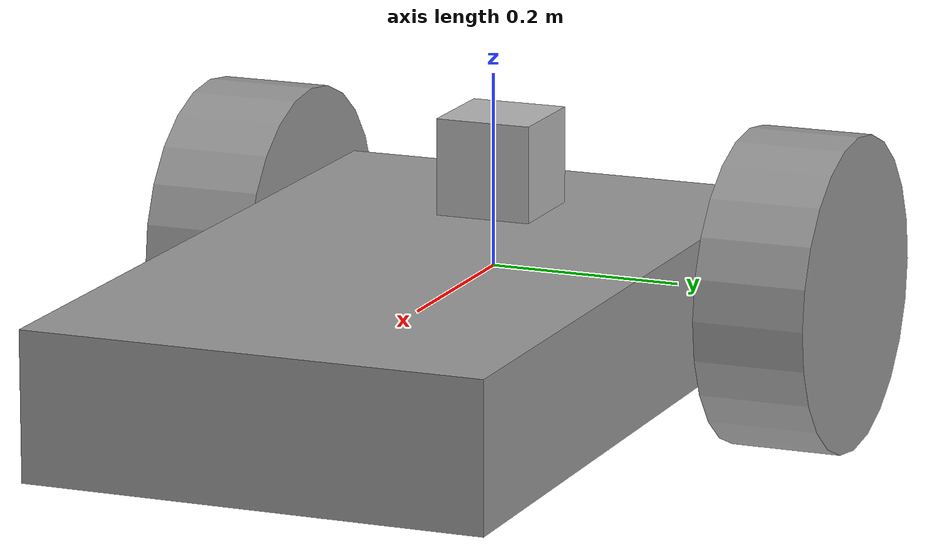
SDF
<?xml version='1.0'?>
<sdf version='1.7'>
  <model name='follower'>
    <link name='link_0'>
      <inertial>
        <mass>0.0572068</mass>
        <inertia>
          <ixx>0.00117995</ixx>
          <ixy>0</ixy>
          <ixz>0</ixz>
          <iyy>0.00315674</iyy>
          <iyz>0</iyz>
          <izz>0.00411931</izz>
        </inertia>
        <pose>0 0 0 0 -0 0</pose>
      </inertial>
      <pose>0.204787 -0.000791 -0.018879 0 -0 0</pose>
      <gravity>1</gravity>
      <self_collide>0</self_collide>
      <kinematic>0</kinematic>
      <enable_wind>0</enable_wind>
      <visual name='visual'>
        <pose>0 0 0 0 -0 0</pose>
        <geometry>
          <box>
            <size>0.799609 0.474039 0.150996</size>
          </box>
        </geometry>
        <material>
          <lighting>1</lighting>
          <script>
            <uri>file://media/materials/scripts/gazebo.material</uri>
            <name>Gazebo/Grey</name>
          </script>
          <shader type='pixel'>
            <normal_map>__default__</normal_map>
          </shader>
          <emissive>0 0 0 1</emissive>
          <ambient>0.3 0.3 0.3 1</ambient>
          <diffuse>0.7 0.7 0.7 1</diffuse>
          <specular>0.01 0.01 0.01 1</specular>
        </material>
        <transparency>0</transparency>
        <cast_shadows>1</cast_shadows>
      </visual>
      <collision name='collision'>
        <laser_retro>0</laser_retro>
        <max_contacts>10</max_contacts>
        <pose>0 0 0 0 -0 0</pose>
        <geometry>
          <box>
            <size>0.799609 0.474039 0.150996</size>
          </box>
        </geometry>
        <surface>
          <friction>
            <ode>
              <mu>1</mu>
              <mu2>1</mu2>
              <fdir1>0 0 0</fdir1>
              <slip1>0</slip1>
              <slip2>0</slip2>
            </ode>
            <torsional>
              <coefficient>1</coefficient>
              <patch_radius>0</patch_radius>
              <surface_radius>0</surface_radius>
              <use_patch_radius>1</use_patch_radius>
              <ode>
                <slip>0</slip>
              </ode>
            </torsional>
          </friction>
          <bounce>
            <restitution_coefficient>0</restitution_coefficient>
            <threshold>1e+06</threshold>
          </bounce>
          <contact>
            <collide_without_contact>0</collide_without_contact>
            <collide_without_contact_bitmask>1</collide_without_contact_bitmask>
            <collide_bitmask>1</collide_bitmask>
            <ode>
              <soft_cfm>0</soft_cfm>
              <soft_erp>0.2</soft_erp>
              <kp>1e+13</kp>
              <kd>1</kd>
              <max_vel>0.01</max_vel>
              <min_depth>0</min_depth>
            </ode>
            <bullet>
              <split_impulse>1</split_impulse>
              <split_impulse_penetration_threshold>-0.01</split_impulse_penetration_threshold>
              <soft_cfm>0</soft_cfm>
              <soft_erp>0.2</soft_erp>
              <kp>1e+13</kp>
              <kd>1</kd>
            </bullet>
          </contact>
        </surface>
      </collision>
    </link>
    <link name='link_1'>
      <inertial>
        <mass>0.0123317</mass>
        <inertia>
          <ixx>9.586e-05</ixx>
          <ixy>0</ixy>
          <ixz>0</ixz>
          <iyy>9.586e-05</iyy>
          <iyz>0</iyz>
          <izz>0.00016418</izz>
        </inertia>
        <pose>0 0 0 0 -0 0</pose>
      </inertial>
      <pose>-0.095213 -0.300791 -0.018879 1.5708 -0 0</pose>
      <gravity>1</gravity>
      <self_collide>0</self_collide>
      <kinematic>0</kinematic>
      <enable_wind>0</enable_wind>
      <visual name='visual'>
        <pose>0 0 0 0 -0 0</pose>
        <geometry>
          <cylinder>
            <radius>0.163176</radius>
            <length>0.115772</length>
          </cylinder>
        </geometry>
        <material>
          <lighting>1</lighting>
          <script>
            <uri>file://media/materials/scripts/gazebo.material</uri>
            <name>Gazebo/Grey</name>
          </script>
          <shader type='pixel'>
            <normal_map>__default__</normal_map>
          </shader>
          <emissive>0 0 0 1</emissive>
          <ambient>0.3 0.3 0.3 1</ambient>
          <diffuse>0.7 0.7 0.7 1</diffuse>
          <specular>0.01 0.01 0.01 1</specular>
        </material>
        <transparency>0</transparency>
        <cast_shadows>1</cast_shadows>
      </visual>
      <collision name='collision'>
        <laser_retro>0</laser_retro>
        <max_contacts>10</max_contacts>
        <pose>0 0 0 0 -0 0</pose>
        <geometry>
          <cylinder>
            <radius>0.163176</radius>
            <length>0.115772</length>
          </cylinder>
        </geometry>
        <surface>
          <friction>
            <ode>
              <mu>1</mu>
              <mu2>1</mu2>
              <fdir1>0 0 0</fdir1>
              <slip1>0</slip1>
              <slip2>0</slip2>
            </ode>
            <torsional>
              <coefficient>1</coefficient>
              <patch_radius>0</patch_radius>
              <surface_radius>0</surface_radius>
              <use_patch_radius>1</use_patch_radius>
              <ode>
                <slip>0</slip>
              </ode>
            </torsional>
          </friction>
          <bounce>
            <restitution_coefficient>0</restitution_coefficient>
            <threshold>1e+06</threshold>
          </bounce>
          <contact>
            <collide_without_contact>0</collide_without_contact>
            <collide_without_contact_bitmask>1</collide_without_contact_bitmask>
            <collide_bitmask>1</collide_bitmask>
            <ode>
              <soft_cfm>0</soft_cfm>
              <soft_erp>0.2</soft_erp>
              <kp>1e+13</kp>
              <kd>1</kd>
              <max_vel>0.01</max_vel>
              <min_depth>0</min_depth>
            </ode>
            <bullet>
              <split_impulse>1</split_impulse>
              <split_impulse_penetration_threshold>-0.01</split_impulse_penetration_threshold>
              <soft_cfm>0</soft_cfm>
              <soft_erp>0.2</soft_erp>
              <kp>1e+13</kp>
              <kd>1</kd>
            </bullet>
          </contact>
        </surface>
      </collision>
    </link>
    <link name='link_1_clone'>
      <inertial>
        <mass>0.0123317</mass>
        <inertia>
          <ixx>9.586e-05</ixx>
          <ixy>0</ixy>
          <ixz>0</ixz>
          <iyy>9.586e-05</iyy>
          <iyz>0</iyz>
          <izz>0.00016417</izz>
        </inertia>
        <pose>0 0 0 0 -0 0</pose>
      </inertial>
      <pose>-0.095213 0.29921 -0.018879 1.5708 -0 0</pose>
      <gravity>1</gravity>
      <self_collide>0</self_collide>
      <kinematic>0</kinematic>
      <enable_wind>0</enable_wind>
      <visual name='visual'>
        <pose>0 0 0 0 -0 0</pose>
        <geometry>
          <cylinder>
            <radius>0.163176</radius>
            <length>0.115772</length>
          </cylinder>
        </geometry>
        <material>
          <lighting>1</lighting>
          <script>
            <uri>file://media/materials/scripts/gazebo.material</uri>
            <name>Gazebo/Grey</name>
          </script>
          <shader type='pixel'>
            <normal_map>__default__</normal_map>
          </shader>
          <emissive>0 0 0 1</emissive>
          <ambient>0.3 0.3 0.3 1</ambient>
          <diffuse>0.7 0.7 0.7 1</diffuse>
          <specular>0.01 0.01 0.01 1</specular>
        </material>
        <transparency>0</transparency>
        <cast_shadows>1</cast_shadows>
      </visual>
      <collision name='collision'>
        <laser_retro>0</laser_retro>
        <max_contacts>10</max_contacts>
        <pose>0 0 0 0 -0 0</pose>
        <geometry>
          <cylinder>
            <radius>0.163176</radius>
            <length>0.115772</length>
          </cylinder>
        </geometry>
        <surface>
          <friction>
            <ode>
              <mu>1</mu>
              <mu2>1</mu2>
              <fdir1>0 0 0</fdir1>
              <slip1>0</slip1>
              <slip2>0</slip2>
            </ode>
            <torsional>
              <coefficient>1</coefficient>
              <patch_radius>0</patch_radius>
              <surface_radius>0</surface_radius>
              <use_patch_radius>1</use_patch_radius>
              <ode>
                <slip>0</slip>
              </ode>
            </torsional>
          </friction>
          <bounce>
            <restitution_coefficient>0</restitution_coefficient>
            <threshold>1e+06</threshold>
          </bounce>
          <contact>
            <collide_without_contact>0</collide_without_contact>
            <collide_without_contact_bitmask>1</collide_without_contact_bitmask>
            <collide_bitmask>1</collide_bitmask>
            <ode>
              <soft_cfm>0</soft_cfm>
              <soft_erp>0.2</soft_erp>
              <kp>1e+13</kp>
              <kd>1</kd>
              <max_vel>0.01</max_vel>
              <min_depth>0</min_depth>
            </ode>
            <bullet>
              <split_impulse>1</split_impulse>
              <split_impulse_penetration_threshold>-0.01</split_impulse_penetration_threshold>
              <soft_cfm>0</soft_cfm>
              <soft_erp>0.2</soft_erp>
              <kp>1e+13</kp>
              <kd>1</kd>
            </bullet>
          </contact>
        </surface>
      </collision>
    </link>
    <model name='depth_camera'>
      <link name='link'>
        <pose>0 0 0.05 0 -0 0</pose>
        <inertial>
          <mass>0.1</mass>
          <inertia>
            <ixx>0.000166667</ixx>
            <iyy>0.000166667</iyy>
            <izz>0.000166667</izz>
            <ixy>0</ixy>
            <ixz>0</ixz>
            <iyz>0</iyz>
          </inertia>
        </inertial>
        <collision name='collision'>
          <geometry>
            <box>
              <size>0.1 0.1 0.1</size>
            </box>
          </geometry>
        </collision>
        <visual name='visual'>
          <geometry>
            <box>
              <size>0.1 0.1 0.1</size>
            </box>
          </geometry>
        </visual>
        <sensor name='camera' type='depth'>
          <camera>
            <horizontal_fov>1.047</horizontal_fov>
            <image>
              <width>320</width>
              <height>240</height>
            </image>
            <clip>
              <near>0.1</near>
              <far>100</far>
            </clip>
          </camera>
          <always_on>1</always_on>
          <update_rate>30</update_rate>
          <visualize>1</visualize>
        </sensor>
      </link>
      <pose>-0.014361 0.002371 0.056637 0 -0 0</pose>
    </model>
    <joint name='link_0_JOINT_0' type='revolute'>
      <parent>link_0</parent>
      <child>link_1</child>
      <pose>0 0 0 0.14 -0 0</pose>
      <axis>
        <xyz>0 1 0</xyz>
        <limit>
          <lower>-1.79769e+308</lower>
          <upper>1.79769e+308</upper>
          <effort>-1</effort>
          <velocity>-1</velocity>
        </limit>
        <dynamics>
          <spring_reference>0</spring_reference>
          <spring_stiffness>0</spring_stiffness>
          <damping>0</damping>
        </dynamics>
      </axis>
      <physics>
        <ode>
          <limit>
            <cfm>0</cfm>
            <erp>0.2</erp>
          </limit>
          <suspension>
            <cfm>0</cfm>
            <erp>0.2</erp>
          </suspension>
        </ode>
      </physics>
    </joint>
    <joint name='link_0_JOINT_1' type='revolute'>
      <parent>link_0</parent>
      <child>link_1_clone</child>
      <pose>0 0 0 0 -0 0</pose>
      <axis>
        <xyz>0 1 0</xyz>
        <limit>
          <lower>-1.79769e+308</lower>
          <upper>1.79769e+308</upper>
          <effort>-1</effort>
          <velocity>-1</velocity>
        </limit>
        <dynamics>
          <spring_reference>0</spring_reference>
          <spring_stiffness>0</spring_stiffness>
          <damping>0</damping>
        </dynamics>
      </axis>
      <physics>
        <ode>
          <limit>
            <cfm>0</cfm>
            <erp>0.2</erp>
          </limit>
          <suspension>
            <cfm>0</cfm>
            <erp>0.2</erp>
          </suspension>
        </ode>
      </physics>
    </joint>
    <joint name='link_0_JOINT_2' type='fixed'>
      <parent>link_0</parent>
      <child>depth_camera::link</child>
      <pose>0 0 0 0 -0 0</pose>
      <physics>
        <ode>
          <limit>
            <cfm>0</cfm>
            <erp>0.2</erp>
          </limit>
          <suspension>
            <cfm>0</cfm>
            <erp>0.2</erp>
          </suspension>
        </ode>
      </physics>
    </joint>
    <static>0</static>
    <allow_auto_disable>1</allow_auto_disable>
    <plugin name='follower' filename='libFollowerPlugin.so'/>
  </model>
</sdf>
